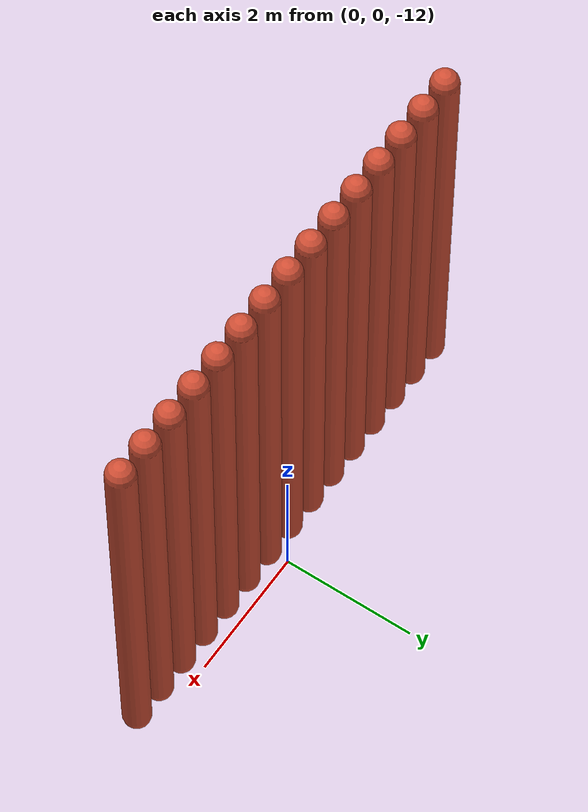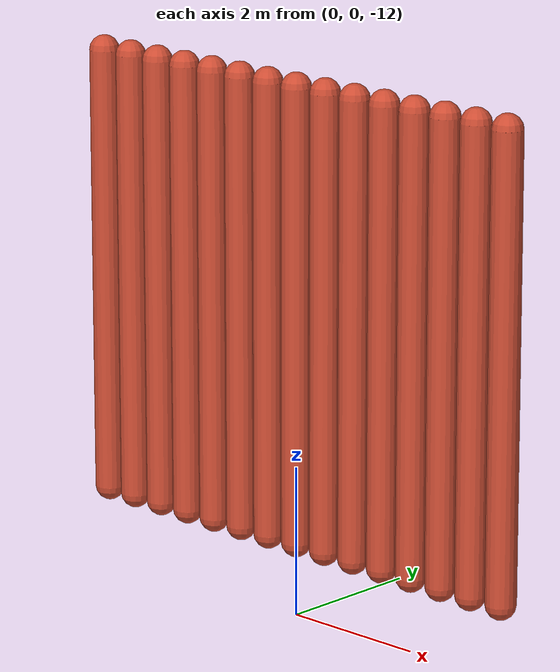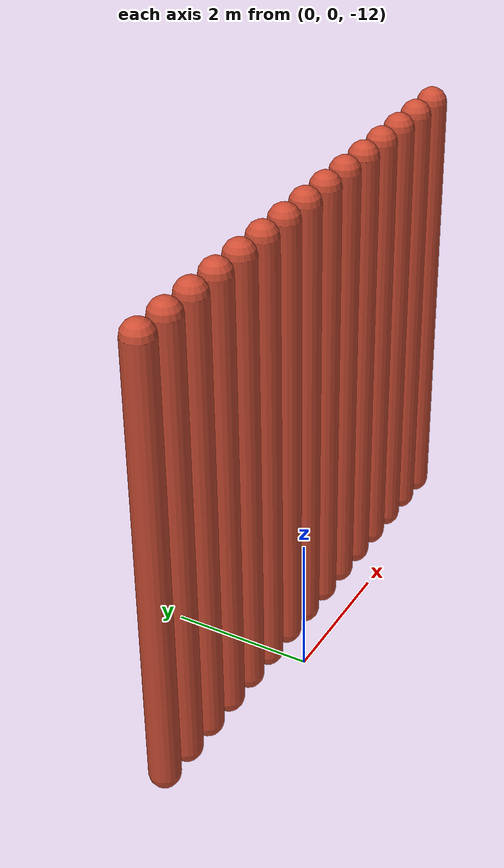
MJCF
<mujoco>
  <worldbody>
    <!-- Fixed obstacle pool parked below the arena until reset() moves them. -->
    <body name="obstacle_0" mocap="true" pos="-3.5 0 -8">
      <geom name="obstacle_0_geom" type="capsule" size="0.2 3" rgba="0.8 0.3 0.2 1"/>
    </body>
    <body name="obstacle_1" mocap="true" pos="-3 0 -8">
      <geom name="obstacle_1_geom" type="capsule" size="0.2 3" rgba="0.8 0.3 0.2 1"/>
    </body>
    <body name="obstacle_2" mocap="true" pos="-2.5 0 -8">
      <geom name="obstacle_2_geom" type="capsule" size="0.2 3" rgba="0.8 0.3 0.2 1"/>
    </body>
    <body name="obstacle_3" mocap="true" pos="-2 0 -8">
      <geom name="obstacle_3_geom" type="capsule" size="0.2 3" rgba="0.8 0.3 0.2 1"/>
    </body>
    <body name="obstacle_4" mocap="true" pos="-1.5 0 -8">
      <geom name="obstacle_4_geom" type="capsule" size="0.2 3" rgba="0.8 0.3 0.2 1"/>
    </body>
    <body name="obstacle_5" mocap="true" pos="-1 0 -8">
      <geom name="obstacle_5_geom" type="capsule" size="0.2 3" rgba="0.8 0.3 0.2 1"/>
    </body>
    <body name="obstacle_6" mocap="true" pos="-0.5 0 -8">
      <geom name="obstacle_6_geom" type="capsule" size="0.2 3" rgba="0.8 0.3 0.2 1"/>
    </body>
    <body name="obstacle_7" mocap="true" pos="0 0 -8">
      <geom name="obstacle_7_geom" type="capsule" size="0.2 3" rgba="0.8 0.3 0.2 1"/>
    </body>
    <body name="obstacle_8" mocap="true" pos="0.5 0 -8">
      <geom name="obstacle_8_geom" type="capsule" size="0.2 3" rgba="0.8 0.3 0.2 1"/>
    </body>
    <body name="obstacle_9" mocap="true" pos="1 0 -8">
      <geom name="obstacle_9_geom" type="capsule" size="0.2 3" rgba="0.8 0.3 0.2 1"/>
    </body>
    <body name="obstacle_10" mocap="true" pos="1.5 0 -8">
      <geom name="obstacle_10_geom" type="capsule" size="0.2 3" rgba="0.8 0.3 0.2 1"/>
    </body>
    <body name="obstacle_11" mocap="true" pos="2 0 -8">
      <geom name="obstacle_11_geom" type="capsule" size="0.2 3" rgba="0.8 0.3 0.2 1"/>
    </body>
    <body name="obstacle_12" mocap="true" pos="2.5 0 -8">
      <geom name="obstacle_12_geom" type="capsule" size="0.2 3" rgba="0.8 0.3 0.2 1"/>
    </body>
    <body name="obstacle_13" mocap="true" pos="3 0 -8">
      <geom name="obstacle_13_geom" type="capsule" size="0.2 3" rgba="0.8 0.3 0.2 1"/>
    </body>
    <body name="obstacle_14" mocap="true" pos="3.5 0 -8">
      <geom name="obstacle_14_geom" type="capsule" size="0.2 3" rgba="0.8 0.3 0.2 1"/>
    </body>
  </worldbody>
</mujoco>
